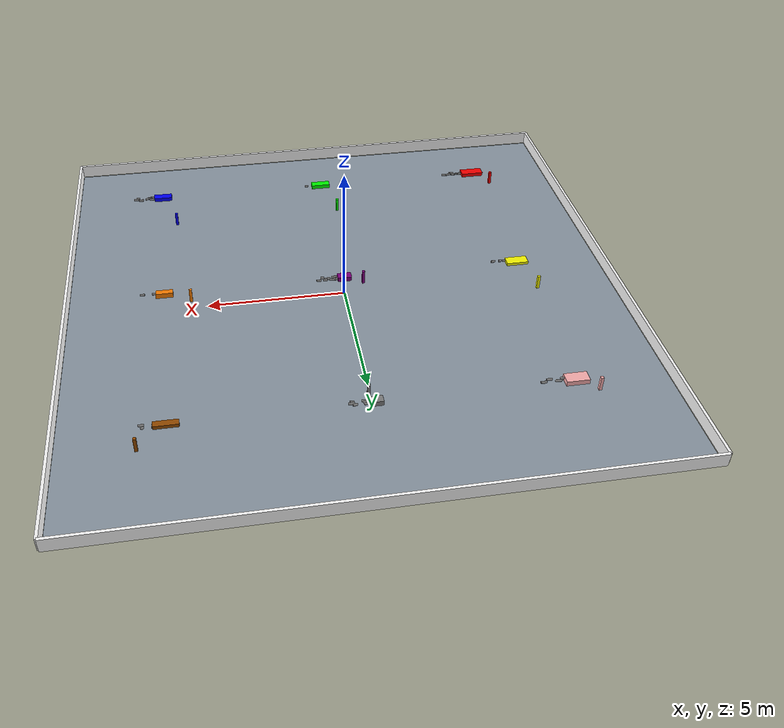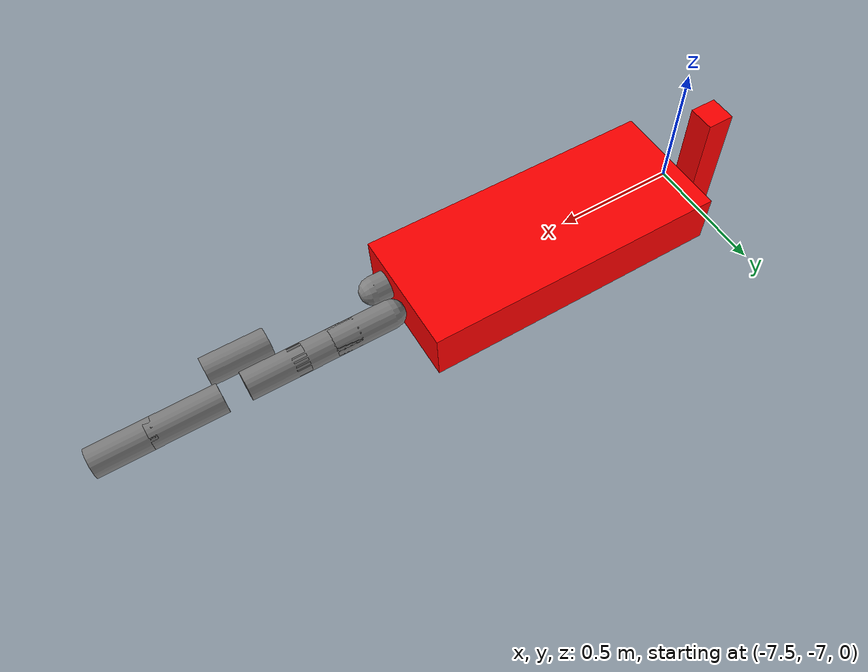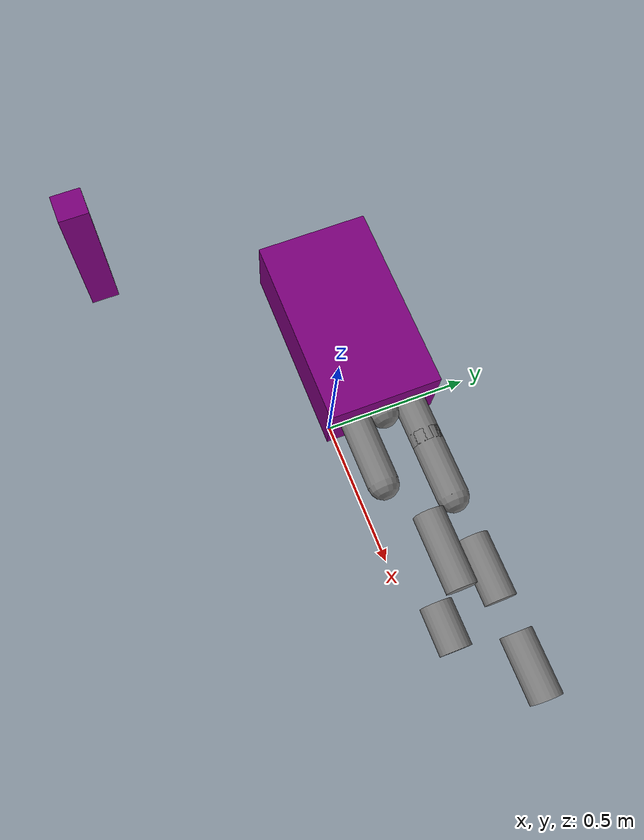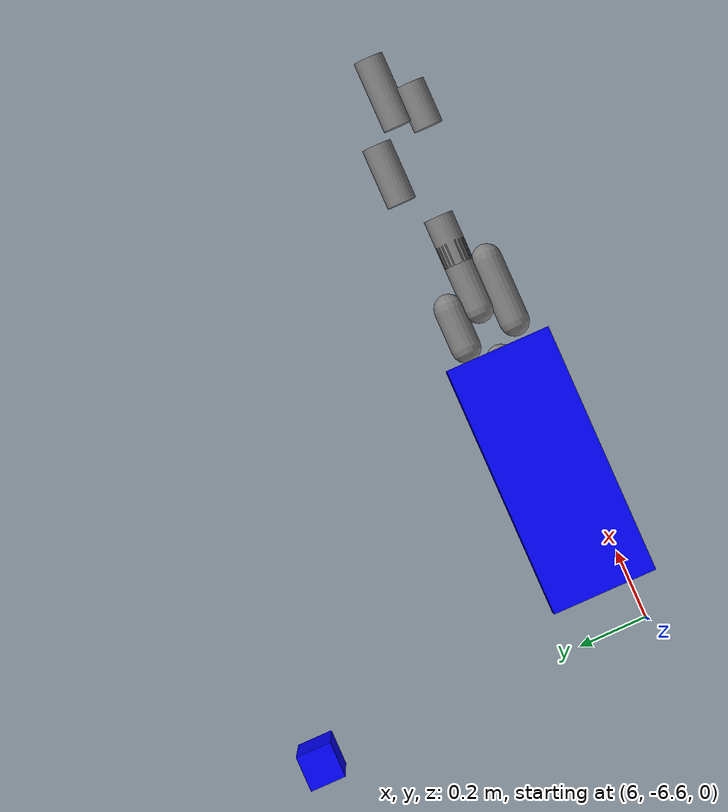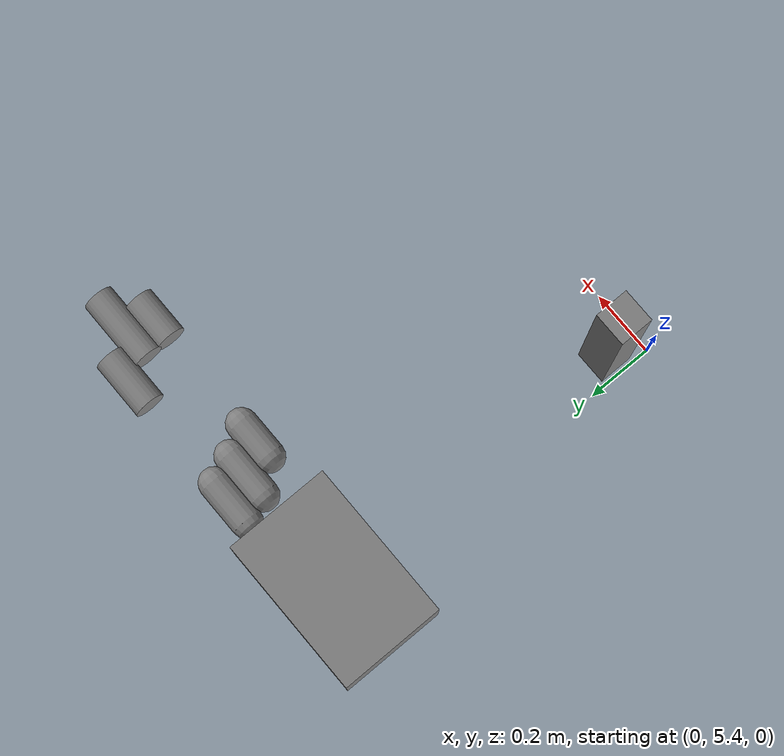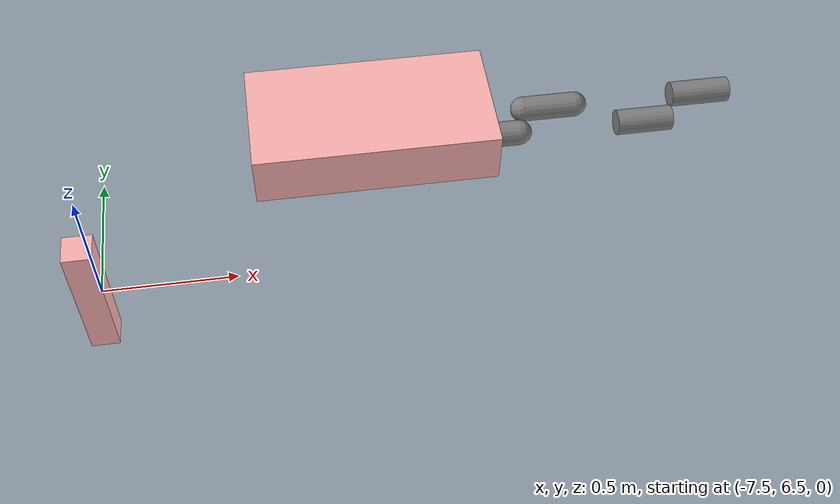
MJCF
<mujoco><asset><texture name="checkered" type="2d" builtin="checker" rgb1="0.2 0.3 0.4" rgb2="0.9 0.9 0.9" width="512" height="512" /><material name="MatCheckered" texture="checkered" reflectance="0.5" /><material name="MatPlane" reflectance="0.5" shininess="1" specular="1" /><material name="red" rgba="1 0 0 1" /><material name="green" rgba="0 1 0 1" /><material name="blue" rgba="0 0 1 1" /><material name="yellow" rgba="1 1 0 1" /><material name="purple" rgba="0.5 0 0.5 1" /><material name="orange" rgba="1 0.5 0 1" /><material name="pink" rgba="1 0.7 0.7 1" /><material name="grey" rgba="0.5 0.5 0.5 1" /><material name="brown" rgba="0.6 0.3 0 1" /></asset><worldbody><geom name="floor" type="plane" size="10 10 0.1" pos="0 0 0" material="MatCheckered" /><body name="torso_0" pos="-6.5 -6.5 0.75"><geom name="torso_geom_torso_0" type="box" size="0.4384421147518127 0.1828265890460235 0.07428886377198642" pos="0 0 0" contype="1" conaffinity="1" material="red" /><joint name="torso_0_root" type="free" armature="0" damping="0" limited="false" /><site name="torso_0_site" pos="0 0 0" type="sphere" size="0.01" /><body name="leg_0_1" pos="0.21922105737590636 0 0"><geom name="leg_0_1_upper_geom" type="capsule" fromto="0.0 0.0 0.0 0.12723787856800509 0.0 0.0" size="0.04" /><joint name="leg_0_1_hip_joint" type="ball" damping="2.0" /><body name="leg_0_1_lower" pos="0.12723787856800509 0.0 0.0"><geom name="leg_0_1_lower_geom" type="capsule" fromto="0.12723787856800509 0.0 0.0 0.30106544602095264 0.0 0.0" size="0.04" /><joint name="leg_0_1_knee_joint" type="hinge" axis="0 1 0" range="-90 90" damping="4.0" limited="true" /><body name="leg_0_1_foot" pos="0.30106544602095264 0.0 0.0"><geom name="leg_0_1_foot_geom" type="cylinder" fromto="0.30106544602095264 0.0 0.0 0.49421903223008296 0.0 0.0" size="0.04" /><joint name="leg_0_1_ankle_joint" type="ball" damping="6.0" /></body></body></body><body name="leg_0_2" pos="-0.21922105737590636 0 0"><geom name="leg_0_2_upper_geom" type="capsule" fromto="0.0 0.0 0.0 0.18384523010486514 0.0 0.0" size="0.04" /><joint name="leg_0_2_hip_joint" type="ball" damping="2.0" /><body name="leg_0_2_lower" pos="0.18384523010486514 0.0 0.0"><geom name="leg_0_2_lower_geom" type="capsule" fromto="0.18384523010486514 0.0 0.0 0.37893598970672127 0.0 0.0" size="0.04" /><joint name="leg_0_2_knee_joint" type="hinge" axis="0 1 0" range="-90 90" damping="4.0" limited="true" /><body name="leg_0_2_foot" pos="0.37893598970672127 0.0 0.0"><geom name="leg_0_2_foot_geom" type="cylinder" fromto="0.37893598970672127 0.0 0.0 0.5440525253643766 0.0 0.0" size="0.04" /><joint name="leg_0_2_ankle_joint" type="ball" damping="6.0" /></body></body></body><body name="leg_0_3" pos="0.21922105737590636 0 0"><geom name="leg_0_3_upper_geom" type="capsule" fromto="0.0 0.0 0.0 0.1783585904967378 0.0 0.0" size="0.04" /><joint name="leg_0_3_hip_joint" type="ball" damping="2.0" /><body name="leg_0_3_lower" pos="0.1783585904967378 0.0 0.0"><geom name="leg_0_3_lower_geom" type="capsule" fromto="0.1783585904967378 0.0 0.0 0.36239198676776607 0.0 0.0" size="0.04" /><joint name="leg_0_3_knee_joint" type="hinge" axis="0 1 0" range="-90 90" damping="4.0" limited="true" /><body name="leg_0_3_foot" pos="0.36239198676776607 0.0 0.0"><geom name="leg_0_3_foot_geom" type="cylinder" fromto="0.36239198676776607 0.0 0.0 0.5260987353114779 0.0 0.0" size="0.04" /><joint name="leg_0_3_ankle_joint" type="ball" damping="6.0" /></body></body></body><body name="leg_0_4" pos="0 -0.09141329452301175 0"><geom name="leg_0_4_upper_geom" type="capsule" fromto="0.0 0.0 0.0 0.1733319591129253 0.0 0.0" size="0.04" /><joint name="leg_0_4_hip_joint" type="ball" damping="2.0" /><body name="leg_0_4_lower" pos="0.1733319591129253 0.0 0.0"><geom name="leg_0_4_lower_geom" type="capsule" fromto="0.1733319591129253 0.0 0.0 0.30600285721019704 0.0 0.0" size="0.04" /><joint name="leg_0_4_knee_joint" type="hinge" axis="0 1 0" range="-90 90" damping="4.0" limited="true" /><body name="leg_0_4_foot" pos="0.30600285721019704 0.0 0.0"><geom name="leg_0_4_foot_geom" type="cylinder" fromto="0.30600285721019704 0.0 0.0 0.4796308179991893 0.0 0.0" size="0.04" /><joint name="leg_0_4_ankle_joint" type="ball" damping="6.0" /></body></body></body></body><geom name="flag_0" type="box" size="0.05 0.05 0.5" pos="-7.450233379862263 -6.811538960317227 0" material="red" contype="1" conaffinity="1" /><body name="torso_1" pos="0 -6.5 0.75"><geom name="torso_geom_torso_1" type="box" size="0.3616448847557103 0.1419368230304678 0.0774318418483266" pos="0 0 0" contype="1" conaffinity="2" material="green" /><joint name="torso_1_root" type="free" armature="0" damping="0" limited="false" /><site name="torso_1_site" pos="0 0 0" type="sphere" size="0.01" /><body name="leg_1_1" pos="-0.18082244237785516 0 0"><geom name="leg_1_1_upper_geom" type="capsule" fromto="0.0 0.0 0.0 0.11391210742820541 0.0 0.0" size="0.04" /><joint name="leg_1_1_hip_joint" type="ball" damping="2.0" /><body name="leg_1_1_lower" pos="0.11391210742820541 0.0 0.0"><geom name="leg_1_1_lower_geom" type="capsule" fromto="0.11391210742820541 0.0 0.0 0.2913574560936691 0.0 0.0" size="0.04" /><joint name="leg_1_1_knee_joint" type="hinge" axis="0 1 0" range="-90 90" damping="4.0" limited="true" /><body name="leg_1_1_foot" pos="0.2913574560936691 0.0 0.0"><geom name="leg_1_1_foot_geom" type="cylinder" fromto="0.2913574560936691 0.0 0.0 0.42393777301908825 0.0 0.0" size="0.04" /><joint name="leg_1_1_ankle_joint" type="ball" damping="6.0" /></body></body></body></body><geom name="flag_1" type="box" size="0.05 0.05 0.5" pos="-0.5891818555668098 -5.691999541416683 0" material="green" contype="1" conaffinity="2" /><body name="torso_2" pos="6.5 -6.5 0.75"><geom name="torso_geom_torso_2" type="box" size="0.34667388521618603 0.14479468650949429 0.07681692433474215" pos="0 0 0" contype="1" conaffinity="3" material="blue" /><joint name="torso_2_root" type="free" armature="0" damping="0" limited="false" /><site name="torso_2_site" pos="0 0 0" type="sphere" size="0.01" /><body name="leg_2_1" pos="0 0.07239734325474714 0"><geom name="leg_2_1_upper_geom" type="capsule" fromto="0.0 0.0 0.0 0.19087407568699644 0.0 0.0" size="0.04" /><joint name="leg_2_1_hip_joint" type="ball" damping="2.0" /><body name="leg_2_1_lower" pos="0.19087407568699644 0.0 0.0"><geom name="leg_2_1_lower_geom" type="capsule" fromto="0.19087407568699644 0.0 0.0 0.3030091150195847 0.0 0.0" size="0.04" /><joint name="leg_2_1_knee_joint" type="hinge" axis="0 1 0" range="-90 90" damping="4.0" limited="true" /><body name="leg_2_1_foot" pos="0.3030091150195847 0.0 0.0"><geom name="leg_2_1_foot_geom" type="cylinder" fromto="0.3030091150195847 0.0 0.0 0.4687890401527088 0.0 0.0" size="0.04" /><joint name="leg_2_1_ankle_joint" type="ball" damping="6.0" /></body></body></body><body name="leg_2_2" pos="-0.17333694260809301 0 0"><geom name="leg_2_2_upper_geom" type="capsule" fromto="0.0 0.0 0.0 0.12788410536740488 0.0 0.0" size="0.04" /><joint name="leg_2_2_hip_joint" type="ball" damping="2.0" /><body name="leg_2_2_lower" pos="0.12788410536740488 0.0 0.0"><geom name="leg_2_2_lower_geom" type="capsule" fromto="0.12788410536740488 0.0 0.0 0.31837749384138575 0.0 0.0" size="0.04" /><joint name="leg_2_2_knee_joint" type="hinge" axis="0 1 0" range="-90 90" damping="4.0" limited="true" /><body name="leg_2_2_foot" pos="0.31837749384138575 0.0 0.0"><geom name="leg_2_2_foot_geom" type="cylinder" fromto="0.31837749384138575 0.0 0.0 0.4536230187188225 0.0 0.0" size="0.04" /><joint name="leg_2_2_ankle_joint" type="ball" damping="6.0" /></body></body></body><body name="leg_2_3" pos="0 -0.07239734325474714 0"><geom name="leg_2_3_upper_geom" type="capsule" fromto="0.0 0.0 0.0 0.19736799203227953 0.0 0.0" size="0.04" /><joint name="leg_2_3_hip_joint" type="ball" damping="2.0" /><body name="leg_2_3_lower" pos="0.19736799203227953 0.0 0.0"><geom name="leg_2_3_lower_geom" type="capsule" fromto="0.19736799203227953 0.0 0.0 0.3773826215066187 0.0 0.0" size="0.04" /><joint name="leg_2_3_knee_joint" type="hinge" axis="0 1 0" range="-90 90" damping="4.0" limited="true" /><body name="leg_2_3_foot" pos="0.3773826215066187 0.0 0.0"><geom name="leg_2_3_foot_geom" type="cylinder" fromto="0.3773826215066187 0.0 0.0 0.502170539979095 0.0 0.0" size="0.04" /><joint name="leg_2_3_ankle_joint" type="ball" damping="6.0" /></body></body></body><body name="leg_2_4" pos="0.17333694260809301 0 0"><geom name="leg_2_4_upper_geom" type="capsule" fromto="0.0 0.0 0.0 0.14509478289921451 0.0 0.0" size="0.04" /><joint name="leg_2_4_hip_joint" type="ball" damping="2.0" /><body name="leg_2_4_lower" pos="0.14509478289921451 0.0 0.0"><geom name="leg_2_4_lower_geom" type="capsule" fromto="0.14509478289921451 0.0 0.0 0.33314036875302633 0.0 0.0" size="0.04" /><joint name="leg_2_4_knee_joint" type="hinge" axis="0 1 0" range="-90 90" damping="4.0" limited="true" /><body name="leg_2_4_foot" pos="0.33314036875302633 0.0 0.0"><geom name="leg_2_4_foot_geom" type="cylinder" fromto="0.33314036875302633 0.0 0.0 0.5288476284196961 0.0 0.0" size="0.04" /><joint name="leg_2_4_ankle_joint" type="ball" damping="6.0" /></body></body></body></body><geom name="flag_2" type="box" size="0.05 0.05 0.5" pos="6.016131887416356 -5.624859068706793 0" material="blue" contype="1" conaffinity="3" /><body name="torso_3" pos="-6.5 0 0.75"><geom name="torso_geom_torso_3" type="box" size="0.40338059468118737 0.18737152916895272 0.053179829426269476" pos="0 0 0" contype="1" conaffinity="4" material="yellow" /><joint name="torso_3_root" type="free" armature="0" damping="0" limited="false" /><site name="torso_3_site" pos="0 0 0" type="sphere" size="0.01" /><body name="leg_3_1" pos="0 -0.09368576458447636 0"><geom name="leg_3_1_upper_geom" type="capsule" fromto="0.0 0.0 0.0 0.10140624361633091 0.0 0.0" size="0.04" /><joint name="leg_3_1_hip_joint" type="ball" damping="2.0" /><body name="leg_3_1_lower" pos="0.10140624361633091 0.0 0.0"><geom name="leg_3_1_lower_geom" type="capsule" fromto="0.10140624361633091 0.0 0.0 0.226126415781222 0.0 0.0" size="0.04" /><joint name="leg_3_1_knee_joint" type="hinge" axis="0 1 0" range="-90 90" damping="4.0" limited="true" /><body name="leg_3_1_foot" pos="0.226126415781222 0.0 0.0"><geom name="leg_3_1_foot_geom" type="cylinder" fromto="0.226126415781222 0.0 0.0 0.32630327988964175 0.0 0.0" size="0.04" /><joint name="leg_3_1_ankle_joint" type="ball" damping="6.0" /></body></body></body><body name="leg_3_2" pos="0 -0.09368576458447636 0"><geom name="leg_3_2_upper_geom" type="capsule" fromto="0.0 0.0 0.0 0.1695880624318276 0.0 0.0" size="0.04" /><joint name="leg_3_2_hip_joint" type="ball" damping="2.0" /><body name="leg_3_2_lower" pos="0.1695880624318276 0.0 0.0"><geom name="leg_3_2_lower_geom" type="capsule" fromto="0.1695880624318276 0.0 0.0 0.3129993988495433 0.0 0.0" size="0.04" /><joint name="leg_3_2_knee_joint" type="hinge" axis="0 1 0" range="-90 90" damping="4.0" limited="true" /><body name="leg_3_2_foot" pos="0.3129993988495433 0.0 0.0"><geom name="leg_3_2_foot_geom" type="cylinder" fromto="0.3129993988495433 0.0 0.0 0.46770020369756937 0.0 0.0" size="0.04" /><joint name="leg_3_2_ankle_joint" type="ball" damping="6.0" /></body></body></body></body><geom name="flag_3" type="box" size="0.05 0.05 0.5" pos="-7.180257559772274 0.7329731593808 0" material="yellow" contype="1" conaffinity="4" /><body name="torso_4" pos="0 0 0.75"><geom name="torso_geom_torso_4" type="box" size="0.2511291870787262 0.14663824384167456 0.0824059011139518" pos="0 0 0" contype="1" conaffinity="5" material="purple" /><joint name="torso_4_root" type="free" armature="0" damping="0" limited="false" /><site name="torso_4_site" pos="0 0 0" type="sphere" size="0.01" /><body name="leg_4_1" pos="0 0.07331912192083728 0"><geom name="leg_4_1_upper_geom" type="capsule" fromto="0.0 0.0 0.0 0.1693297506399168 0.0 0.0" size="0.04" /><joint name="leg_4_1_hip_joint" type="ball" damping="2.0" /><body name="leg_4_1_lower" pos="0.1693297506399168 0.0 0.0"><geom name="leg_4_1_lower_geom" type="capsule" fromto="0.1693297506399168 0.0 0.0 0.34916850549045486 0.0 0.0" size="0.04" /><joint name="leg_4_1_knee_joint" type="hinge" axis="0 1 0" range="-90 90" damping="4.0" limited="true" /><body name="leg_4_1_foot" pos="0.34916850549045486 0.0 0.0"><geom name="leg_4_1_foot_geom" type="cylinder" fromto="0.34916850549045486 0.0 0.0 0.5094913265438211 0.0 0.0" size="0.04" /><joint name="leg_4_1_ankle_joint" type="ball" damping="6.0" /></body></body></body><body name="leg_4_2" pos="0 -0.07331912192083728 0"><geom name="leg_4_2_upper_geom" type="capsule" fromto="0.0 0.0 0.0 0.11515587361860545 0.0 0.0" size="0.04" /><joint name="leg_4_2_hip_joint" type="ball" damping="2.0" /><body name="leg_4_2_lower" pos="0.11515587361860545 0.0 0.0"><geom name="leg_4_2_lower_geom" type="capsule" fromto="0.11515587361860545 0.0 0.0 0.3131448287342636 0.0 0.0" size="0.04" /><joint name="leg_4_2_knee_joint" type="hinge" axis="0 1 0" range="-90 90" damping="4.0" limited="true" /><body name="leg_4_2_foot" pos="0.3131448287342636 0.0 0.0"><geom name="leg_4_2_foot_geom" type="cylinder" fromto="0.3131448287342636 0.0 0.0 0.428788712014762 0.0 0.0" size="0.04" /><joint name="leg_4_2_ankle_joint" type="ball" damping="6.0" /></body></body></body><body name="leg_4_3" pos="0 0.07331912192083728 0"><geom name="leg_4_3_upper_geom" type="capsule" fromto="0.0 0.0 0.0 0.11473654265601346 0.0 0.0" size="0.04" /><joint name="leg_4_3_hip_joint" type="ball" damping="2.0" /><body name="leg_4_3_lower" pos="0.11473654265601346 0.0 0.0"><geom name="leg_4_3_lower_geom" type="capsule" fromto="0.11473654265601346 0.0 0.0 0.2559048947275482 0.0 0.0" size="0.04" /><joint name="leg_4_3_knee_joint" type="hinge" axis="0 1 0" range="-90 90" damping="4.0" limited="true" /><body name="leg_4_3_foot" pos="0.2559048947275482 0.0 0.0"><geom name="leg_4_3_foot_geom" type="cylinder" fromto="0.2559048947275482 0.0 0.0 0.41782046327871447 0.0 0.0" size="0.04" /><joint name="leg_4_3_ankle_joint" type="ball" damping="6.0" /></body></body></body><body name="leg_4_4" pos="-0.1255645935393631 0 0"><geom name="leg_4_4_upper_geom" type="capsule" fromto="0.0 0.0 0.0 0.10113647950587283 0.0 0.0" size="0.04" /><joint name="leg_4_4_hip_joint" type="ball" damping="2.0" /><body name="leg_4_4_lower" pos="0.10113647950587283 0.0 0.0"><geom name="leg_4_4_lower_geom" type="capsule" fromto="0.10113647950587283 0.0 0.0 0.27906336393470865 0.0 0.0" size="0.04" /><joint name="leg_4_4_knee_joint" type="hinge" axis="0 1 0" range="-90 90" damping="4.0" limited="true" /><body name="leg_4_4_foot" pos="0.27906336393470865 0.0 0.0"><geom name="leg_4_4_foot_geom" type="cylinder" fromto="0.27906336393470865 0.0 0.0 0.4768038689148357 0.0 0.0" size="0.04" /><joint name="leg_4_4_ankle_joint" type="ball" damping="6.0" /></body></body></body></body><geom name="flag_4" type="box" size="0.05 0.05 0.5" pos="-0.8148566036801473 -0.5796625875790633 0" material="purple" contype="1" conaffinity="5" /><body name="torso_5" pos="6.5 0 0.75"><geom name="torso_geom_torso_5" type="box" size="0.3053468254013878 0.10813661886956925 0.09469490419864479" pos="0 0 0" contype="1" conaffinity="6" material="orange" /><joint name="torso_5_root" type="free" armature="0" damping="0" limited="false" /><site name="torso_5_site" pos="0 0 0" type="sphere" size="0.01" /><body name="leg_5_1" pos="0 -0.05406830943478463 0"><geom name="leg_5_1_upper_geom" type="capsule" fromto="0.0 0.0 0.0 0.115308399981987 0.0 0.0" size="0.04" /><joint name="leg_5_1_hip_joint" type="ball" damping="2.0" /><body name="leg_5_1_lower" pos="0.115308399981987 0.0 0.0"><geom name="leg_5_1_lower_geom" type="capsule" fromto="0.115308399981987 0.0 0.0 0.2899777229244197 0.0 0.0" size="0.04" /><joint name="leg_5_1_knee_joint" type="hinge" axis="0 1 0" range="-90 90" damping="4.0" limited="true" /><body name="leg_5_1_foot" pos="0.2899777229244197 0.0 0.0"><geom name="leg_5_1_foot_geom" type="cylinder" fromto="0.2899777229244197 0.0 0.0 0.4473075093430339 0.0 0.0" size="0.04" /><joint name="leg_5_1_ankle_joint" type="ball" damping="6.0" /></body></body></body></body><geom name="flag_5" type="box" size="0.05 0.05 0.5" pos="5.600724604884164 -0.43738285716207165 0" material="orange" contype="1" conaffinity="6" /><body name="torso_6" pos="-6.5 6.5 0.75"><geom name="torso_geom_torso_6" type="box" size="0.38707018394165615 0.198140120471532 0.08785321313954646" pos="0 0 0" contype="1" conaffinity="7" material="pink" /><joint name="torso_6_root" type="free" armature="0" damping="0" limited="false" /><site name="torso_6_site" pos="0 0 0" type="sphere" size="0.01" /><body name="leg_6_1" pos="0.19353509197082808 0 0"><geom name="leg_6_1_upper_geom" type="capsule" fromto="0.0 0.0 0.0 0.15218873067239763 0.0 0.0" size="0.04" /><joint name="leg_6_1_hip_joint" type="ball" damping="2.0" /><body name="leg_6_1_lower" pos="0.15218873067239763 0.0 0.0"><geom name="leg_6_1_lower_geom" type="capsule" fromto="0.15218873067239763 0.0 0.0 0.3217776688467471 0.0 0.0" size="0.04" /><joint name="leg_6_1_knee_joint" type="hinge" axis="0 1 0" range="-90 90" damping="4.0" limited="true" /><body name="leg_6_1_foot" pos="0.3217776688467471 0.0 0.0"><geom name="leg_6_1_foot_geom" type="cylinder" fromto="0.3217776688467471 0.0 0.0 0.513076437960242 0.0 0.0" size="0.04" /><joint name="leg_6_1_ankle_joint" type="ball" damping="6.0" /></body></body></body><body name="leg_6_2" pos="0 -0.099070060235766 0"><geom name="leg_6_2_upper_geom" type="capsule" fromto="0.0 0.0 0.0 0.14957056666982282 0.0 0.0" size="0.04" /><joint name="leg_6_2_hip_joint" type="ball" damping="2.0" /><body name="leg_6_2_lower" pos="0.14957056666982282 0.0 0.0"><geom name="leg_6_2_lower_geom" type="capsule" fromto="0.14957056666982282 0.0 0.0 0.3172292045863759 0.0 0.0" size="0.04" /><joint name="leg_6_2_knee_joint" type="hinge" axis="0 1 0" range="-90 90" damping="4.0" limited="true" /><body name="leg_6_2_foot" pos="0.3172292045863759 0.0 0.0"><geom name="leg_6_2_foot_geom" type="cylinder" fromto="0.3172292045863759 0.0 0.0 0.4954156977096631 0.0 0.0" size="0.04" /><joint name="leg_6_2_ankle_joint" type="ball" damping="6.0" /></body></body></body></body><geom name="flag_6" type="box" size="0.05 0.05 0.5" pos="-7.483519404541246 6.319197397997614 0" material="pink" contype="1" conaffinity="7" /><body name="torso_7" pos="0 6.5 0.75"><geom name="torso_geom_torso_7" type="box" size="0.2109812898780073 0.13957969286942473 0.08766060703555875" pos="0 0 0" contype="1" conaffinity="8" material="grey" /><joint name="torso_7_root" type="free" armature="0" damping="0" limited="false" /><site name="torso_7_site" pos="0 0 0" type="sphere" size="0.01" /><body name="leg_7_1" pos="0 -0.06978984643471237 0"><geom name="leg_7_1_upper_geom" type="capsule" fromto="0.0 0.0 0.0 0.16451258774871863 0.0 0.0" size="0.04" /><joint name="leg_7_1_hip_joint" type="ball" damping="2.0" /><body name="leg_7_1_lower" pos="0.16451258774871863 0.0 0.0"><geom name="leg_7_1_lower_geom" type="capsule" fromto="0.16451258774871863 0.0 0.0 0.2686130368114106 0.0 0.0" size="0.04" /><joint name="leg_7_1_knee_joint" type="hinge" axis="0 1 0" range="-90 90" damping="4.0" limited="true" /><body name="leg_7_1_foot" pos="0.2686130368114106 0.0 0.0"><geom name="leg_7_1_foot_geom" type="cylinder" fromto="0.2686130368114106 0.0 0.0 0.3937185509861615 0.0 0.0" size="0.04" /><joint name="leg_7_1_ankle_joint" type="ball" damping="6.0" /></body></body></body><body name="leg_7_2" pos="-0.10549064493900365 0 0"><geom name="leg_7_2_upper_geom" type="capsule" fromto="0.0 0.0 0.0 0.18585607424395184 0.0 0.0" size="0.04" /><joint name="leg_7_2_hip_joint" type="ball" damping="2.0" /><body name="leg_7_2_lower" pos="0.18585607424395184 0.0 0.0"><geom name="leg_7_2_lower_geom" type="capsule" fromto="0.18585607424395184 0.0 0.0 0.31047925664176473 0.0 0.0" size="0.04" /><joint name="leg_7_2_knee_joint" type="hinge" axis="0 1 0" range="-90 90" damping="4.0" limited="true" /><body name="leg_7_2_foot" pos="0.31047925664176473 0.0 0.0"><geom name="leg_7_2_foot_geom" type="cylinder" fromto="0.31047925664176473 0.0 0.0 0.5028991407940616 0.0 0.0" size="0.04" /><joint name="leg_7_2_ankle_joint" type="ball" damping="6.0" /></body></body></body><body name="leg_7_3" pos="0 0.06978984643471237 0"><geom name="leg_7_3_upper_geom" type="capsule" fromto="0.0 0.0 0.0 0.12075793074375345 0.0 0.0" size="0.04" /><joint name="leg_7_3_hip_joint" type="ball" damping="2.0" /><body name="leg_7_3_lower" pos="0.12075793074375345 0.0 0.0"><geom name="leg_7_3_lower_geom" type="capsule" fromto="0.12075793074375345 0.0 0.0 0.24339580151632456 0.0 0.0" size="0.04" /><joint name="leg_7_3_knee_joint" type="hinge" axis="0 1 0" range="-90 90" damping="4.0" limited="true" /><body name="leg_7_3_foot" pos="0.24339580151632456 0.0 0.0"><geom name="leg_7_3_foot_geom" type="cylinder" fromto="0.24339580151632456 0.0 0.0 0.395857822388463 0.0 0.0" size="0.04" /><joint name="leg_7_3_ankle_joint" type="ball" damping="6.0" /></body></body></body></body><geom name="flag_7" type="box" size="0.05 0.05 0.5" pos="0.06455935948703709 5.502086131420841 0" material="grey" contype="1" conaffinity="8" /><body name="torso_8" pos="6.5 6.5 0.75"><geom name="torso_geom_torso_8" type="box" size="0.401851015335902 0.111948706205804 0.06278159619908388" pos="0 0 0" contype="1" conaffinity="9" material="brown" /><joint name="torso_8_root" type="free" armature="0" damping="0" limited="false" /><site name="torso_8_site" pos="0 0 0" type="sphere" size="0.01" /><body name="leg_8_1" pos="0 -0.055974353102902 0"><geom name="leg_8_1_upper_geom" type="capsule" fromto="0.0 0.0 0.0 0.1123067178182876 0.0 0.0" size="0.04" /><joint name="leg_8_1_hip_joint" type="ball" damping="2.0" /><body name="leg_8_1_lower" pos="0.1123067178182876 0.0 0.0"><geom name="leg_8_1_lower_geom" type="capsule" fromto="0.1123067178182876 0.0 0.0 0.27458868348751414 0.0 0.0" size="0.04" /><joint name="leg_8_1_knee_joint" type="hinge" axis="0 1 0" range="-90 90" damping="4.0" limited="true" /><body name="leg_8_1_foot" pos="0.27458868348751414 0.0 0.0"><geom name="leg_8_1_foot_geom" type="cylinder" fromto="0.27458868348751414 0.0 0.0 0.44774298382555333 0.0 0.0" size="0.04" /><joint name="leg_8_1_ankle_joint" type="ball" damping="6.0" /></body></body></body><body name="leg_8_2" pos="0 0.055974353102902 0"><geom name="leg_8_2_upper_geom" type="capsule" fromto="0.0 0.0 0.0 0.14649828267135095 0.0 0.0" size="0.04" /><joint name="leg_8_2_hip_joint" type="ball" damping="2.0" /><body name="leg_8_2_lower" pos="0.14649828267135095 0.0 0.0"><geom name="leg_8_2_lower_geom" type="capsule" fromto="0.14649828267135095 0.0 0.0 0.25396391247882416 0.0 0.0" size="0.04" /><joint name="leg_8_2_knee_joint" type="hinge" axis="0 1 0" range="-90 90" damping="4.0" limited="true" /><body name="leg_8_2_foot" pos="0.25396391247882416 0.0 0.0"><geom name="leg_8_2_foot_geom" type="cylinder" fromto="0.25396391247882416 0.0 0.0 0.35857681597971564 0.0 0.0" size="0.04" /><joint name="leg_8_2_ankle_joint" type="ball" damping="6.0" /></body></body></body></body><geom name="flag_8" type="box" size="0.05 0.05 0.5" pos="7.477656976099359 6.710206653282564 0" material="brown" contype="1" conaffinity="9" /><geom name="north_wall" type="box" pos="0 10.05 0.25" size="10.05 0.05 0.25" material="MatPlane" /><geom name="south_wall" type="box" pos="0 -10.05 0.25" size="10.05 0.05 0.25" material="MatPlane" /><geom name="east_wall" type="box" pos="10.05 0 0.25" size="0.05 10.05 0.25" material="MatPlane" /><geom name="west_wall" type="box" pos="-10.05 0 0.25" size="0.05 10.05 0.25" material="MatPlane" /></worldbody><actuator><motor name="leg_0_1_hip_motor" joint="leg_0_1_hip_joint" ctrllimited="true" ctrlrange="-1 1" gear="200" /><motor name="leg_0_1_ankle_joint_motor" joint="leg_0_1_ankle_joint" ctrllimited="true" ctrlrange="-1 1" gear="200" /><motor name="leg_0_2_hip_motor" joint="leg_0_2_hip_joint" ctrllimited="true" ctrlrange="-1 1" gear="200" /><motor name="leg_0_2_ankle_joint_motor" joint="leg_0_2_ankle_joint" ctrllimited="true" ctrlrange="-1 1" gear="200" /><motor name="leg_0_3_hip_motor" joint="leg_0_3_hip_joint" ctrllimited="true" ctrlrange="-1 1" gear="200" /><motor name="leg_0_3_ankle_joint_motor" joint="leg_0_3_ankle_joint" ctrllimited="true" ctrlrange="-1 1" gear="200" /><motor name="leg_0_4_hip_motor" joint="leg_0_4_hip_joint" ctrllimited="true" ctrlrange="-1 1" gear="200" /><motor name="leg_0_4_ankle_joint_motor" joint="leg_0_4_ankle_joint" ctrllimited="true" ctrlrange="-1 1" gear="200" /><motor name="leg_1_1_hip_motor" joint="leg_1_1_hip_joint" ctrllimited="true" ctrlrange="-1 1" gear="200" /><motor name="leg_1_1_ankle_joint_motor" joint="leg_1_1_ankle_joint" ctrllimited="true" ctrlrange="-1 1" gear="200" /><motor name="leg_2_1_hip_motor" joint="leg_2_1_hip_joint" ctrllimited="true" ctrlrange="-1 1" gear="200" /><motor name="leg_2_1_ankle_joint_motor" joint="leg_2_1_ankle_joint" ctrllimited="true" ctrlrange="-1 1" gear="200" /><motor name="leg_2_2_hip_motor" joint="leg_2_2_hip_joint" ctrllimited="true" ctrlrange="-1 1" gear="200" /><motor name="leg_2_2_ankle_joint_motor" joint="leg_2_2_ankle_joint" ctrllimited="true" ctrlrange="-1 1" gear="200" /><motor name="leg_2_3_hip_motor" joint="leg_2_3_hip_joint" ctrllimited="true" ctrlrange="-1 1" gear="200" /><motor name="leg_2_3_ankle_joint_motor" joint="leg_2_3_ankle_joint" ctrllimited="true" ctrlrange="-1 1" gear="200" /><motor name="leg_2_4_hip_motor" joint="leg_2_4_hip_joint" ctrllimited="true" ctrlrange="-1 1" gear="200" /><motor name="leg_2_4_ankle_joint_motor" joint="leg_2_4_ankle_joint" ctrllimited="true" ctrlrange="-1 1" gear="200" /><motor name="leg_3_1_hip_motor" joint="leg_3_1_hip_joint" ctrllimited="true" ctrlrange="-1 1" gear="200" /><motor name="leg_3_1_ankle_joint_motor" joint="leg_3_1_ankle_joint" ctrllimited="true" ctrlrange="-1 1" gear="200" /><motor name="leg_3_2_hip_motor" joint="leg_3_2_hip_joint" ctrllimited="true" ctrlrange="-1 1" gear="200" /><motor name="leg_3_2_ankle_joint_motor" joint="leg_3_2_ankle_joint" ctrllimited="true" ctrlrange="-1 1" gear="200" /><motor name="leg_4_1_hip_motor" joint="leg_4_1_hip_joint" ctrllimited="true" ctrlrange="-1 1" gear="200" /><motor name="leg_4_1_ankle_joint_motor" joint="leg_4_1_ankle_joint" ctrllimited="true" ctrlrange="-1 1" gear="200" /><motor name="leg_4_2_hip_motor" joint="leg_4_2_hip_joint" ctrllimited="true" ctrlrange="-1 1" gear="200" /><motor name="leg_4_2_ankle_joint_motor" joint="leg_4_2_ankle_joint" ctrllimited="true" ctrlrange="-1 1" gear="200" /><motor name="leg_4_3_hip_motor" joint="leg_4_3_hip_joint" ctrllimited="true" ctrlrange="-1 1" gear="200" /><motor name="leg_4_3_ankle_joint_motor" joint="leg_4_3_ankle_joint" ctrllimited="true" ctrlrange="-1 1" gear="200" /><motor name="leg_4_4_hip_motor" joint="leg_4_4_hip_joint" ctrllimited="true" ctrlrange="-1 1" gear="200" /><motor name="leg_4_4_ankle_joint_motor" joint="leg_4_4_ankle_joint" ctrllimited="true" ctrlrange="-1 1" gear="200" /><motor name="leg_5_1_hip_motor" joint="leg_5_1_hip_joint" ctrllimited="true" ctrlrange="-1 1" gear="200" /><motor name="leg_5_1_ankle_joint_motor" joint="leg_5_1_ankle_joint" ctrllimited="true" ctrlrange="-1 1" gear="200" /><motor name="leg_6_1_hip_motor" joint="leg_6_1_hip_joint" ctrllimited="true" ctrlrange="-1 1" gear="200" /><motor name="leg_6_1_ankle_joint_motor" joint="leg_6_1_ankle_joint" ctrllimited="true" ctrlrange="-1 1" gear="200" /><motor name="leg_6_2_hip_motor" joint="leg_6_2_hip_joint" ctrllimited="true" ctrlrange="-1 1" gear="200" /><motor name="leg_6_2_ankle_joint_motor" joint="leg_6_2_ankle_joint" ctrllimited="true" ctrlrange="-1 1" gear="200" /><motor name="leg_7_1_hip_motor" joint="leg_7_1_hip_joint" ctrllimited="true" ctrlrange="-1 1" gear="200" /><motor name="leg_7_1_ankle_joint_motor" joint="leg_7_1_ankle_joint" ctrllimited="true" ctrlrange="-1 1" gear="200" /><motor name="leg_7_2_hip_motor" joint="leg_7_2_hip_joint" ctrllimited="true" ctrlrange="-1 1" gear="200" /><motor name="leg_7_2_ankle_joint_motor" joint="leg_7_2_ankle_joint" ctrllimited="true" ctrlrange="-1 1" gear="200" /><motor name="leg_7_3_hip_motor" joint="leg_7_3_hip_joint" ctrllimited="true" ctrlrange="-1 1" gear="200" /><motor name="leg_7_3_ankle_joint_motor" joint="leg_7_3_ankle_joint" ctrllimited="true" ctrlrange="-1 1" gear="200" /><motor name="leg_8_1_hip_motor" joint="leg_8_1_hip_joint" ctrllimited="true" ctrlrange="-1 1" gear="200" /><motor name="leg_8_1_ankle_joint_motor" joint="leg_8_1_ankle_joint" ctrllimited="true" ctrlrange="-1 1" gear="200" /><motor name="leg_8_2_hip_motor" joint="leg_8_2_hip_joint" ctrllimited="true" ctrlrange="-1 1" gear="200" /><motor name="leg_8_2_ankle_joint_motor" joint="leg_8_2_ankle_joint" ctrllimited="true" ctrlrange="-1 1" gear="200" /></actuator><sensor><accelerometer name="torso_0_accel" site="torso_0_site" /><gyro name="torso_0_gyro" site="torso_0_site" /><accelerometer name="torso_1_accel" site="torso_1_site" /><gyro name="torso_1_gyro" site="torso_1_site" /><accelerometer name="torso_2_accel" site="torso_2_site" /><gyro name="torso_2_gyro" site="torso_2_site" /><accelerometer name="torso_3_accel" site="torso_3_site" /><gyro name="torso_3_gyro" site="torso_3_site" /><accelerometer name="torso_4_accel" site="torso_4_site" /><gyro name="torso_4_gyro" site="torso_4_site" /><accelerometer name="torso_5_accel" site="torso_5_site" /><gyro name="torso_5_gyro" site="torso_5_site" /><accelerometer name="torso_6_accel" site="torso_6_site" /><gyro name="torso_6_gyro" site="torso_6_site" /><accelerometer name="torso_7_accel" site="torso_7_site" /><gyro name="torso_7_gyro" site="torso_7_site" /><accelerometer name="torso_8_accel" site="torso_8_site" /><gyro name="torso_8_gyro" site="torso_8_site" /></sensor></mujoco>
